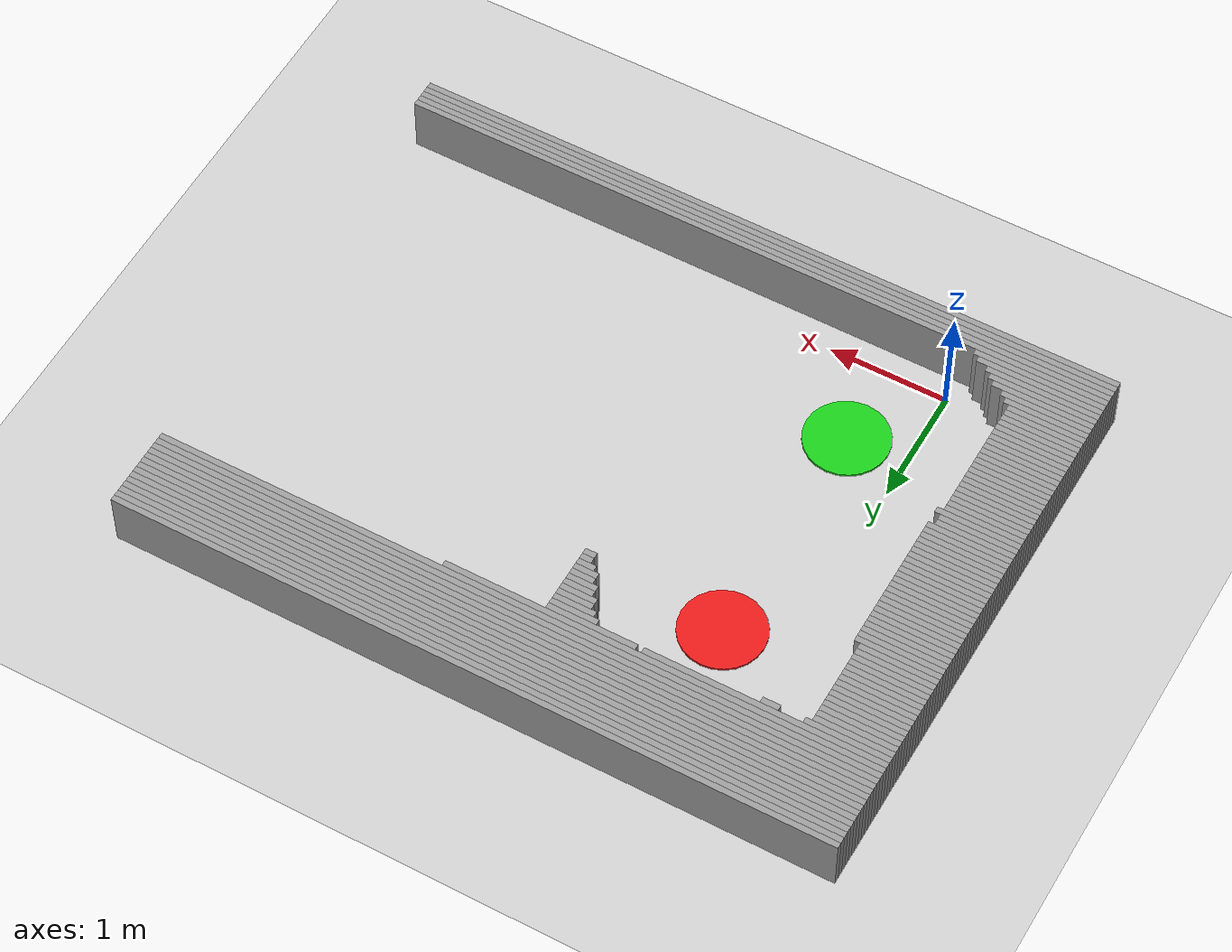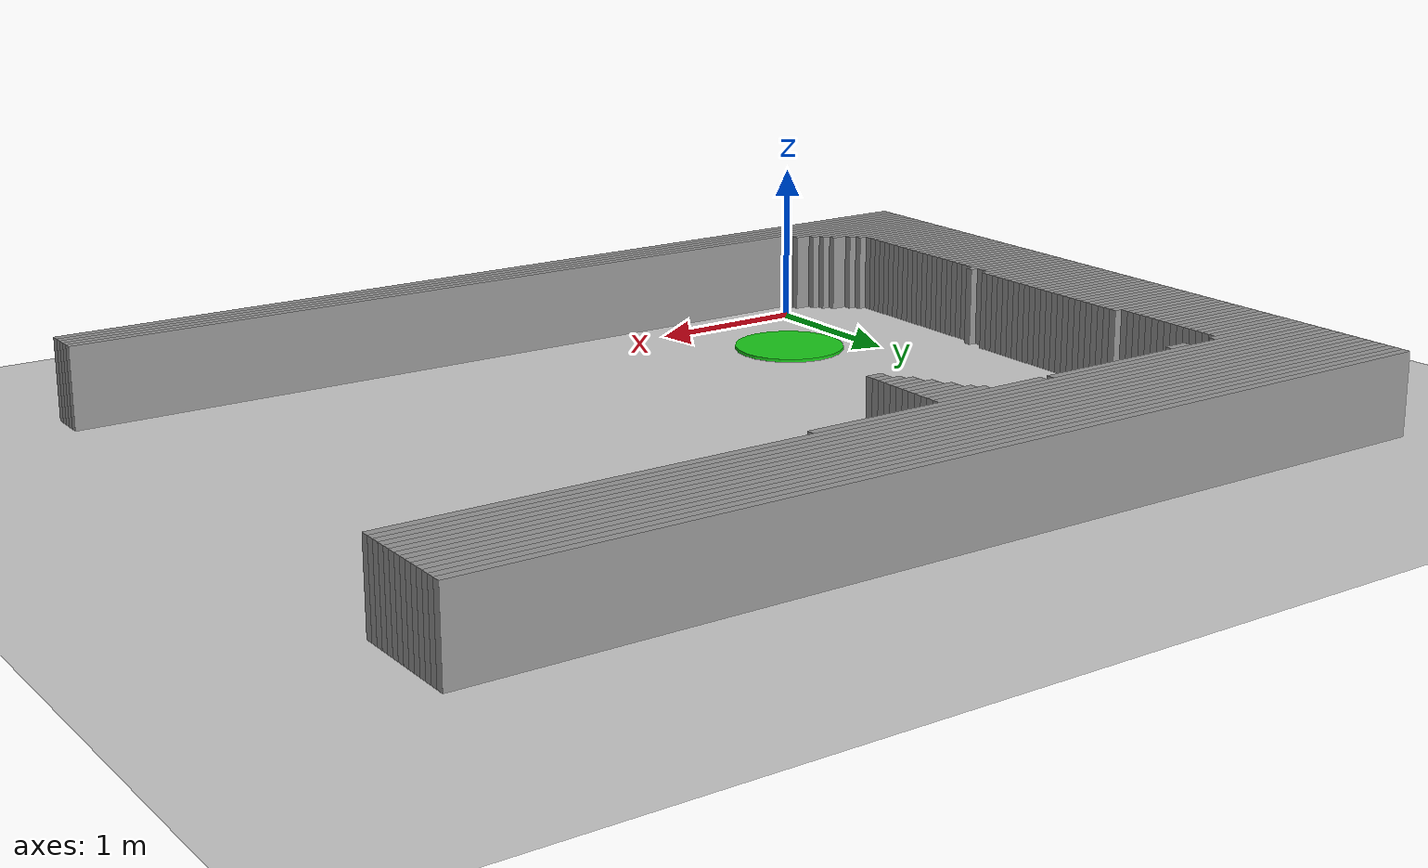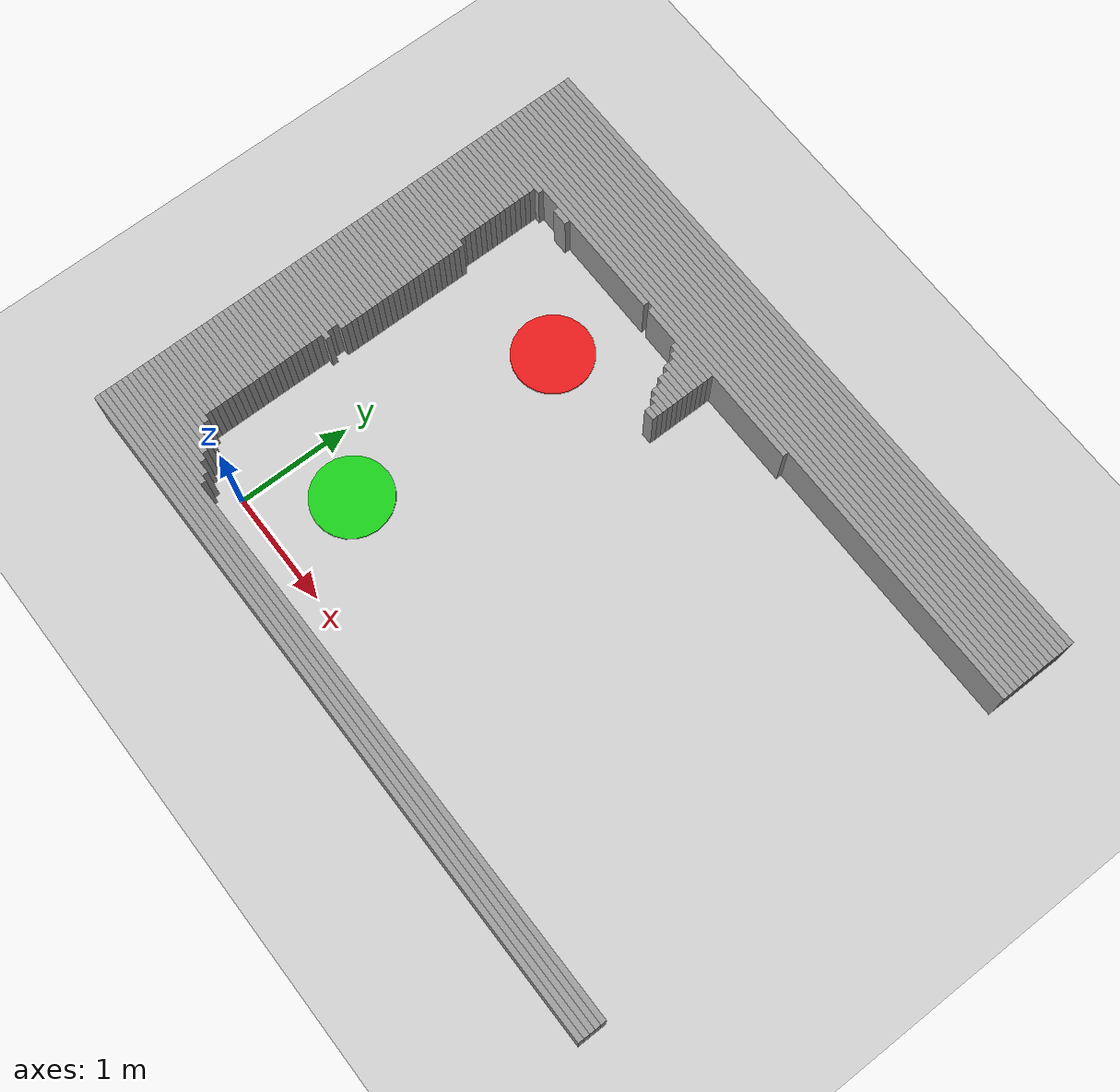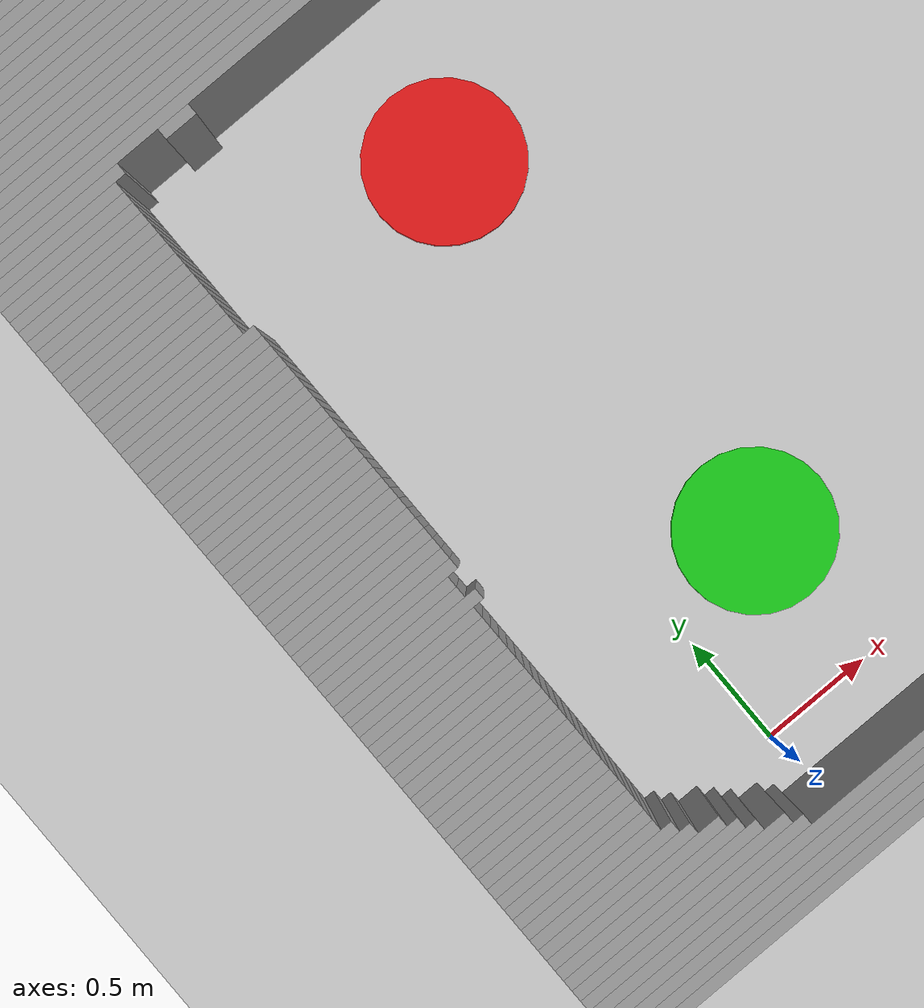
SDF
<sdf version="1.6">
 <world name="lab_world">
  <model name="ground_plane">
   <static>true</static>
   <link name="link">
    <collision name="collision">
     <geometry><plane><normal>0 0 1</normal><size>100 100</size></plane></geometry>
    </collision>
    <visual name="visual">
     <geometry><plane><normal>0 0 1</normal><size>100 100</size></plane></geometry>
     <material><ambient>0.8 0.8 0.8 1</ambient><diffuse>0.8 0.8 0.8 1</diffuse></material>
    </visual>
   </link>
  </model>
  <model name="wall_0">
   <static>true</static>
   <pose>1.8340 4.1660 0.2500 0 0 0</pose>
   <link name="link">
    <collision name="col"><geometry><box><size>6.1000 0.0500 0.5000</size></box></geometry></collision>
    <visual name="vis">
     <geometry><box><size>6.1000 0.0500 0.5000</size></box></geometry>
     <material><ambient>0.4 0.4 0.4 1</ambient><diffuse>0.6 0.6 0.6 1</diffuse></material>
    </visual>
   </link>
  </model>
  <model name="wall_1">
   <static>true</static>
   <pose>1.8340 4.1160 0.2500 0 0 0</pose>
   <link name="link">
    <collision name="col"><geometry><box><size>6.1000 0.0500 0.5000</size></box></geometry></collision>
    <visual name="vis">
     <geometry><box><size>6.1000 0.0500 0.5000</size></box></geometry>
     <material><ambient>0.4 0.4 0.4 1</ambient><diffuse>0.6 0.6 0.6 1</diffuse></material>
    </visual>
   </link>
  </model>
  <model name="wall_2">
   <static>true</static>
   <pose>1.8340 4.0660 0.2500 0 0 0</pose>
   <link name="link">
    <collision name="col"><geometry><box><size>6.1000 0.0500 0.5000</size></box></geometry></collision>
    <visual name="vis">
     <geometry><box><size>6.1000 0.0500 0.5000</size></box></geometry>
     <material><ambient>0.4 0.4 0.4 1</ambient><diffuse>0.6 0.6 0.6 1</diffuse></material>
    </visual>
   </link>
  </model>
  <model name="wall_3">
   <static>true</static>
   <pose>1.8340 4.0160 0.2500 0 0 0</pose>
   <link name="link">
    <collision name="col"><geometry><box><size>6.1000 0.0500 0.5000</size></box></geometry></collision>
    <visual name="vis">
     <geometry><box><size>6.1000 0.0500 0.5000</size></box></geometry>
     <material><ambient>0.4 0.4 0.4 1</ambient><diffuse>0.6 0.6 0.6 1</diffuse></material>
    </visual>
   </link>
  </model>
  <model name="wall_4">
   <static>true</static>
   <pose>1.8340 3.9660 0.2500 0 0 0</pose>
   <link name="link">
    <collision name="col"><geometry><box><size>6.1000 0.0500 0.5000</size></box></geometry></collision>
    <visual name="vis">
     <geometry><box><size>6.1000 0.0500 0.5000</size></box></geometry>
     <material><ambient>0.4 0.4 0.4 1</ambient><diffuse>0.6 0.6 0.6 1</diffuse></material>
    </visual>
   </link>
  </model>
  <model name="wall_5">
   <static>true</static>
   <pose>1.8340 3.9160 0.2500 0 0 0</pose>
   <link name="link">
    <collision name="col"><geometry><box><size>6.1000 0.0500 0.5000</size></box></geometry></collision>
    <visual name="vis">
     <geometry><box><size>6.1000 0.0500 0.5000</size></box></geometry>
     <material><ambient>0.4 0.4 0.4 1</ambient><diffuse>0.6 0.6 0.6 1</diffuse></material>
    </visual>
   </link>
  </model>
  <model name="wall_6">
   <static>true</static>
   <pose>1.8340 3.8660 0.2500 0 0 0</pose>
   <link name="link">
    <collision name="col"><geometry><box><size>6.1000 0.0500 0.5000</size></box></geometry></collision>
    <visual name="vis">
     <geometry><box><size>6.1000 0.0500 0.5000</size></box></geometry>
     <material><ambient>0.4 0.4 0.4 1</ambient><diffuse>0.6 0.6 0.6 1</diffuse></material>
    </visual>
   </link>
  </model>
  <model name="wall_7">
   <static>true</static>
   <pose>1.8340 3.8160 0.2500 0 0 0</pose>
   <link name="link">
    <collision name="col"><geometry><box><size>6.1000 0.0500 0.5000</size></box></geometry></collision>
    <visual name="vis">
     <geometry><box><size>6.1000 0.0500 0.5000</size></box></geometry>
     <material><ambient>0.4 0.4 0.4 1</ambient><diffuse>0.6 0.6 0.6 1</diffuse></material>
    </visual>
   </link>
  </model>
  <model name="wall_8">
   <static>true</static>
   <pose>1.8340 3.7660 0.2500 0 0 0</pose>
   <link name="link">
    <collision name="col"><geometry><box><size>6.1000 0.0500 0.5000</size></box></geometry></collision>
    <visual name="vis">
     <geometry><box><size>6.1000 0.0500 0.5000</size></box></geometry>
     <material><ambient>0.4 0.4 0.4 1</ambient><diffuse>0.6 0.6 0.6 1</diffuse></material>
    </visual>
   </link>
  </model>
  <model name="wall_9">
   <static>true</static>
   <pose>1.8340 3.7160 0.2500 0 0 0</pose>
   <link name="link">
    <collision name="col"><geometry><box><size>6.1000 0.0500 0.5000</size></box></geometry></collision>
    <visual name="vis">
     <geometry><box><size>6.1000 0.0500 0.5000</size></box></geometry>
     <material><ambient>0.4 0.4 0.4 1</ambient><diffuse>0.6 0.6 0.6 1</diffuse></material>
    </visual>
   </link>
  </model>
  <model name="wall_10">
   <static>true</static>
   <pose>1.8340 3.6660 0.2500 0 0 0</pose>
   <link name="link">
    <collision name="col"><geometry><box><size>6.1000 0.0500 0.5000</size></box></geometry></collision>
    <visual name="vis">
     <geometry><box><size>6.1000 0.0500 0.5000</size></box></geometry>
     <material><ambient>0.4 0.4 0.4 1</ambient><diffuse>0.6 0.6 0.6 1</diffuse></material>
    </visual>
   </link>
  </model>
  <model name="wall_11">
   <static>true</static>
   <pose>1.8340 3.6160 0.2500 0 0 0</pose>
   <link name="link">
    <collision name="col"><geometry><box><size>6.1000 0.0500 0.5000</size></box></geometry></collision>
    <visual name="vis">
     <geometry><box><size>6.1000 0.0500 0.5000</size></box></geometry>
     <material><ambient>0.4 0.4 0.4 1</ambient><diffuse>0.6 0.6 0.6 1</diffuse></material>
    </visual>
   </link>
  </model>
  <model name="wall_12">
   <static>true</static>
   <pose>1.8340 3.5660 0.2500 0 0 0</pose>
   <link name="link">
    <collision name="col"><geometry><box><size>6.1000 0.0500 0.5000</size></box></geometry></collision>
    <visual name="vis">
     <geometry><box><size>6.1000 0.0500 0.5000</size></box></geometry>
     <material><ambient>0.4 0.4 0.4 1</ambient><diffuse>0.6 0.6 0.6 1</diffuse></material>
    </visual>
   </link>
  </model>
  <model name="wall_13">
   <static>true</static>
   <pose>1.8340 3.5160 0.2500 0 0 0</pose>
   <link name="link">
    <collision name="col"><geometry><box><size>6.1000 0.0500 0.5000</size></box></geometry></collision>
    <visual name="vis">
     <geometry><box><size>6.1000 0.0500 0.5000</size></box></geometry>
     <material><ambient>0.4 0.4 0.4 1</ambient><diffuse>0.6 0.6 0.6 1</diffuse></material>
    </visual>
   </link>
  </model>
  <model name="wall_14">
   <static>true</static>
   <pose>0.6090 3.4660 0.2500 0 0 0</pose>
   <link name="link">
    <collision name="col"><geometry><box><size>3.6500 0.0500 0.5000</size></box></geometry></collision>
    <visual name="vis">
     <geometry><box><size>3.6500 0.0500 0.5000</size></box></geometry>
     <material><ambient>0.4 0.4 0.4 1</ambient><diffuse>0.6 0.6 0.6 1</diffuse></material>
    </visual>
   </link>
  </model>
  <model name="wall_16">
   <static>true</static>
   <pose>-0.2160 3.4160 0.2500 0 0 0</pose>
   <link name="link">
    <collision name="col"><geometry><box><size>2.0000 0.0500 0.5000</size></box></geometry></collision>
    <visual name="vis">
     <geometry><box><size>2.0000 0.0500 0.5000</size></box></geometry>
     <material><ambient>0.4 0.4 0.4 1</ambient><diffuse>0.6 0.6 0.6 1</diffuse></material>
    </visual>
   </link>
  </model>
  <model name="wall_17">
   <static>true</static>
   <pose>1.2090 3.4160 0.2500 0 0 0</pose>
   <link name="link">
    <collision name="col"><geometry><box><size>0.7500 0.0500 0.5000</size></box></geometry></collision>
    <visual name="vis">
     <geometry><box><size>0.7500 0.0500 0.5000</size></box></geometry>
     <material><ambient>0.4 0.4 0.4 1</ambient><diffuse>0.6 0.6 0.6 1</diffuse></material>
    </visual>
   </link>
  </model>
  <model name="wall_19">
   <static>true</static>
   <pose>-0.8660 3.3660 0.2500 0 0 0</pose>
   <link name="link">
    <collision name="col"><geometry><box><size>0.7000 0.0500 0.5000</size></box></geometry></collision>
    <visual name="vis">
     <geometry><box><size>0.7000 0.0500 0.5000</size></box></geometry>
     <material><ambient>0.4 0.4 0.4 1</ambient><diffuse>0.6 0.6 0.6 1</diffuse></material>
    </visual>
   </link>
  </model>
  <model name="wall_20">
   <static>true</static>
   <pose>-0.2410 3.3660 0.2500 0 0 0</pose>
   <link name="link">
    <collision name="col"><geometry><box><size>0.1500 0.0500 0.5000</size></box></geometry></collision>
    <visual name="vis">
     <geometry><box><size>0.1500 0.0500 0.5000</size></box></geometry>
     <material><ambient>0.4 0.4 0.4 1</ambient><diffuse>0.6 0.6 0.6 1</diffuse></material>
    </visual>
   </link>
  </model>
  <model name="wall_21">
   <static>true</static>
   <pose>1.3840 3.3660 0.2500 0 0 0</pose>
   <link name="link">
    <collision name="col"><geometry><box><size>0.4000 0.0500 0.5000</size></box></geometry></collision>
    <visual name="vis">
     <geometry><box><size>0.4000 0.0500 0.5000</size></box></geometry>
     <material><ambient>0.4 0.4 0.4 1</ambient><diffuse>0.6 0.6 0.6 1</diffuse></material>
    </visual>
   </link>
  </model>
  <model name="wall_23">
   <static>true</static>
   <pose>-0.8910 3.3160 0.2500 0 0 0</pose>
   <link name="link">
    <collision name="col"><geometry><box><size>0.6500 0.0500 0.5000</size></box></geometry></collision>
    <visual name="vis">
     <geometry><box><size>0.6500 0.0500 0.5000</size></box></geometry>
     <material><ambient>0.4 0.4 0.4 1</ambient><diffuse>0.6 0.6 0.6 1</diffuse></material>
    </visual>
   </link>
  </model>
  <model name="wall_24">
   <static>true</static>
   <pose>1.4090 3.3160 0.2500 0 0 0</pose>
   <link name="link">
    <collision name="col"><geometry><box><size>0.3500 0.0500 0.5000</size></box></geometry></collision>
    <visual name="vis">
     <geometry><box><size>0.3500 0.0500 0.5000</size></box></geometry>
     <material><ambient>0.4 0.4 0.4 1</ambient><diffuse>0.6 0.6 0.6 1</diffuse></material>
    </visual>
   </link>
  </model>
  <model name="wall_26">
   <static>true</static>
   <pose>-0.8910 3.2660 0.2500 0 0 0</pose>
   <link name="link">
    <collision name="col"><geometry><box><size>0.6500 0.0500 0.5000</size></box></geometry></collision>
    <visual name="vis">
     <geometry><box><size>0.6500 0.0500 0.5000</size></box></geometry>
     <material><ambient>0.4 0.4 0.4 1</ambient><diffuse>0.6 0.6 0.6 1</diffuse></material>
    </visual>
   </link>
  </model>
  <model name="wall_27">
   <static>true</static>
   <pose>1.4340 3.2660 0.2500 0 0 0</pose>
   <link name="link">
    <collision name="col"><geometry><box><size>0.3000 0.0500 0.5000</size></box></geometry></collision>
    <visual name="vis">
     <geometry><box><size>0.3000 0.0500 0.5000</size></box></geometry>
     <material><ambient>0.4 0.4 0.4 1</ambient><diffuse>0.6 0.6 0.6 1</diffuse></material>
    </visual>
   </link>
  </model>
  <model name="wall_29">
   <static>true</static>
   <pose>-0.8910 3.2160 0.2500 0 0 0</pose>
   <link name="link">
    <collision name="col"><geometry><box><size>0.6500 0.0500 0.5000</size></box></geometry></collision>
    <visual name="vis">
     <geometry><box><size>0.6500 0.0500 0.5000</size></box></geometry>
     <material><ambient>0.4 0.4 0.4 1</ambient><diffuse>0.6 0.6 0.6 1</diffuse></material>
    </visual>
   </link>
  </model>
  <model name="wall_30">
   <static>true</static>
   <pose>1.4340 3.2160 0.2500 0 0 0</pose>
   <link name="link">
    <collision name="col"><geometry><box><size>0.3000 0.0500 0.5000</size></box></geometry></collision>
    <visual name="vis">
     <geometry><box><size>0.3000 0.0500 0.5000</size></box></geometry>
     <material><ambient>0.4 0.4 0.4 1</ambient><diffuse>0.6 0.6 0.6 1</diffuse></material>
    </visual>
   </link>
  </model>
  <model name="wall_32">
   <static>true</static>
   <pose>-0.8910 3.1660 0.2500 0 0 0</pose>
   <link name="link">
    <collision name="col"><geometry><box><size>0.6500 0.0500 0.5000</size></box></geometry></collision>
    <visual name="vis">
     <geometry><box><size>0.6500 0.0500 0.5000</size></box></geometry>
     <material><ambient>0.4 0.4 0.4 1</ambient><diffuse>0.6 0.6 0.6 1</diffuse></material>
    </visual>
   </link>
  </model>
  <model name="wall_33">
   <static>true</static>
   <pose>1.4590 3.1660 0.2500 0 0 0</pose>
   <link name="link">
    <collision name="col"><geometry><box><size>0.2500 0.0500 0.5000</size></box></geometry></collision>
    <visual name="vis">
     <geometry><box><size>0.2500 0.0500 0.5000</size></box></geometry>
     <material><ambient>0.4 0.4 0.4 1</ambient><diffuse>0.6 0.6 0.6 1</diffuse></material>
    </visual>
   </link>
  </model>
  <model name="wall_35">
   <static>true</static>
   <pose>-0.8910 3.1160 0.2500 0 0 0</pose>
   <link name="link">
    <collision name="col"><geometry><box><size>0.6500 0.0500 0.5000</size></box></geometry></collision>
    <visual name="vis">
     <geometry><box><size>0.6500 0.0500 0.5000</size></box></geometry>
     <material><ambient>0.4 0.4 0.4 1</ambient><diffuse>0.6 0.6 0.6 1</diffuse></material>
    </visual>
   </link>
  </model>
  <model name="wall_36">
   <static>true</static>
   <pose>1.4590 3.1160 0.2500 0 0 0</pose>
   <link name="link">
    <collision name="col"><geometry><box><size>0.2500 0.0500 0.5000</size></box></geometry></collision>
    <visual name="vis">
     <geometry><box><size>0.2500 0.0500 0.5000</size></box></geometry>
     <material><ambient>0.4 0.4 0.4 1</ambient><diffuse>0.6 0.6 0.6 1</diffuse></material>
    </visual>
   </link>
  </model>
  <model name="wall_38">
   <static>true</static>
   <pose>-0.8910 3.0660 0.2500 0 0 0</pose>
   <link name="link">
    <collision name="col"><geometry><box><size>0.6500 0.0500 0.5000</size></box></geometry></collision>
    <visual name="vis">
     <geometry><box><size>0.6500 0.0500 0.5000</size></box></geometry>
     <material><ambient>0.4 0.4 0.4 1</ambient><diffuse>0.6 0.6 0.6 1</diffuse></material>
    </visual>
   </link>
  </model>
  <model name="wall_39">
   <static>true</static>
   <pose>1.4840 3.0660 0.2500 0 0 0</pose>
   <link name="link">
    <collision name="col"><geometry><box><size>0.2000 0.0500 0.5000</size></box></geometry></collision>
    <visual name="vis">
     <geometry><box><size>0.2000 0.0500 0.5000</size></box></geometry>
     <material><ambient>0.4 0.4 0.4 1</ambient><diffuse>0.6 0.6 0.6 1</diffuse></material>
    </visual>
   </link>
  </model>
  <model name="wall_41">
   <static>true</static>
   <pose>-0.8910 3.0160 0.2500 0 0 0</pose>
   <link name="link">
    <collision name="col"><geometry><box><size>0.6500 0.0500 0.5000</size></box></geometry></collision>
    <visual name="vis">
     <geometry><box><size>0.6500 0.0500 0.5000</size></box></geometry>
     <material><ambient>0.4 0.4 0.4 1</ambient><diffuse>0.6 0.6 0.6 1</diffuse></material>
    </visual>
   </link>
  </model>
  <model name="wall_42">
   <static>true</static>
   <pose>1.4840 3.0160 0.2500 0 0 0</pose>
   <link name="link">
    <collision name="col"><geometry><box><size>0.2000 0.0500 0.5000</size></box></geometry></collision>
    <visual name="vis">
     <geometry><box><size>0.2000 0.0500 0.5000</size></box></geometry>
     <material><ambient>0.4 0.4 0.4 1</ambient><diffuse>0.6 0.6 0.6 1</diffuse></material>
    </visual>
   </link>
  </model>
  <model name="wall_44">
   <static>true</static>
   <pose>-0.8910 2.9660 0.2500 0 0 0</pose>
   <link name="link">
    <collision name="col"><geometry><box><size>0.6500 0.0500 0.5000</size></box></geometry></collision>
    <visual name="vis">
     <geometry><box><size>0.6500 0.0500 0.5000</size></box></geometry>
     <material><ambient>0.4 0.4 0.4 1</ambient><diffuse>0.6 0.6 0.6 1</diffuse></material>
    </visual>
   </link>
  </model>
  <model name="wall_45">
   <static>true</static>
   <pose>1.5090 2.9660 0.2500 0 0 0</pose>
   <link name="link">
    <collision name="col"><geometry><box><size>0.1500 0.0500 0.5000</size></box></geometry></collision>
    <visual name="vis">
     <geometry><box><size>0.1500 0.0500 0.5000</size></box></geometry>
     <material><ambient>0.4 0.4 0.4 1</ambient><diffuse>0.6 0.6 0.6 1</diffuse></material>
    </visual>
   </link>
  </model>
  <model name="wall_47">
   <static>true</static>
   <pose>-0.8910 2.9160 0.2500 0 0 0</pose>
   <link name="link">
    <collision name="col"><geometry><box><size>0.6500 0.0500 0.5000</size></box></geometry></collision>
    <visual name="vis">
     <geometry><box><size>0.6500 0.0500 0.5000</size></box></geometry>
     <material><ambient>0.4 0.4 0.4 1</ambient><diffuse>0.6 0.6 0.6 1</diffuse></material>
    </visual>
   </link>
  </model>
  <model name="wall_48">
   <static>true</static>
   <pose>1.5340 2.9160 0.2500 0 0 0</pose>
   <link name="link">
    <collision name="col"><geometry><box><size>0.1000 0.0500 0.5000</size></box></geometry></collision>
    <visual name="vis">
     <geometry><box><size>0.1000 0.0500 0.5000</size></box></geometry>
     <material><ambient>0.4 0.4 0.4 1</ambient><diffuse>0.6 0.6 0.6 1</diffuse></material>
    </visual>
   </link>
  </model>
  <model name="wall_50">
   <static>true</static>
   <pose>-0.8910 2.8660 0.2500 0 0 0</pose>
   <link name="link">
    <collision name="col"><geometry><box><size>0.6500 0.0500 0.5000</size></box></geometry></collision>
    <visual name="vis">
     <geometry><box><size>0.6500 0.0500 0.5000</size></box></geometry>
     <material><ambient>0.4 0.4 0.4 1</ambient><diffuse>0.6 0.6 0.6 1</diffuse></material>
    </visual>
   </link>
  </model>
  <model name="wall_51">
   <static>true</static>
   <pose>1.5340 2.8660 0.2500 0 0 0</pose>
   <link name="link">
    <collision name="col"><geometry><box><size>0.1000 0.0500 0.5000</size></box></geometry></collision>
    <visual name="vis">
     <geometry><box><size>0.1000 0.0500 0.5000</size></box></geometry>
     <material><ambient>0.4 0.4 0.4 1</ambient><diffuse>0.6 0.6 0.6 1</diffuse></material>
    </visual>
   </link>
  </model>
  <model name="wall_53">
   <static>true</static>
   <pose>-0.8910 2.8160 0.2500 0 0 0</pose>
   <link name="link">
    <collision name="col"><geometry><box><size>0.6500 0.0500 0.5000</size></box></geometry></collision>
    <visual name="vis">
     <geometry><box><size>0.6500 0.0500 0.5000</size></box></geometry>
     <material><ambient>0.4 0.4 0.4 1</ambient><diffuse>0.6 0.6 0.6 1</diffuse></material>
    </visual>
   </link>
  </model>
  <model name="wall_55">
   <static>true</static>
   <pose>-0.8910 2.7660 0.2500 0 0 0</pose>
   <link name="link">
    <collision name="col"><geometry><box><size>0.6500 0.0500 0.5000</size></box></geometry></collision>
    <visual name="vis">
     <geometry><box><size>0.6500 0.0500 0.5000</size></box></geometry>
     <material><ambient>0.4 0.4 0.4 1</ambient><diffuse>0.6 0.6 0.6 1</diffuse></material>
    </visual>
   </link>
  </model>
  <model name="wall_57">
   <static>true</static>
   <pose>-0.8910 2.7160 0.2500 0 0 0</pose>
   <link name="link">
    <collision name="col"><geometry><box><size>0.6500 0.0500 0.5000</size></box></geometry></collision>
    <visual name="vis">
     <geometry><box><size>0.6500 0.0500 0.5000</size></box></geometry>
     <material><ambient>0.4 0.4 0.4 1</ambient><diffuse>0.6 0.6 0.6 1</diffuse></material>
    </visual>
   </link>
  </model>
  <model name="wall_59">
   <static>true</static>
   <pose>-0.8910 2.6660 0.2500 0 0 0</pose>
   <link name="link">
    <collision name="col"><geometry><box><size>0.6500 0.0500 0.5000</size></box></geometry></collision>
    <visual name="vis">
     <geometry><box><size>0.6500 0.0500 0.5000</size></box></geometry>
     <material><ambient>0.4 0.4 0.4 1</ambient><diffuse>0.6 0.6 0.6 1</diffuse></material>
    </visual>
   </link>
  </model>
  <model name="wall_61">
   <static>true</static>
   <pose>-0.8910 2.6160 0.2500 0 0 0</pose>
   <link name="link">
    <collision name="col"><geometry><box><size>0.6500 0.0500 0.5000</size></box></geometry></collision>
    <visual name="vis">
     <geometry><box><size>0.6500 0.0500 0.5000</size></box></geometry>
     <material><ambient>0.4 0.4 0.4 1</ambient><diffuse>0.6 0.6 0.6 1</diffuse></material>
    </visual>
   </link>
  </model>
  <model name="wall_63">
   <static>true</static>
   <pose>-0.8660 2.5660 0.2500 0 0 0</pose>
   <link name="link">
    <collision name="col"><geometry><box><size>0.7000 0.0500 0.5000</size></box></geometry></collision>
    <visual name="vis">
     <geometry><box><size>0.7000 0.0500 0.5000</size></box></geometry>
     <material><ambient>0.4 0.4 0.4 1</ambient><diffuse>0.6 0.6 0.6 1</diffuse></material>
    </visual>
   </link>
  </model>
  <model name="wall_65">
   <static>true</static>
   <pose>-0.8660 2.5160 0.2500 0 0 0</pose>
   <link name="link">
    <collision name="col"><geometry><box><size>0.7000 0.0500 0.5000</size></box></geometry></collision>
    <visual name="vis">
     <geometry><box><size>0.7000 0.0500 0.5000</size></box></geometry>
     <material><ambient>0.4 0.4 0.4 1</ambient><diffuse>0.6 0.6 0.6 1</diffuse></material>
    </visual>
   </link>
  </model>
  <model name="wall_67">
   <static>true</static>
   <pose>-0.8660 2.4660 0.2500 0 0 0</pose>
   <link name="link">
    <collision name="col"><geometry><box><size>0.7000 0.0500 0.5000</size></box></geometry></collision>
    <visual name="vis">
     <geometry><box><size>0.7000 0.0500 0.5000</size></box></geometry>
     <material><ambient>0.4 0.4 0.4 1</ambient><diffuse>0.6 0.6 0.6 1</diffuse></material>
    </visual>
   </link>
  </model>
  <model name="wall_69">
   <static>true</static>
   <pose>-0.8660 2.4160 0.2500 0 0 0</pose>
   <link name="link">
    <collision name="col"><geometry><box><size>0.7000 0.0500 0.5000</size></box></geometry></collision>
    <visual name="vis">
     <geometry><box><size>0.7000 0.0500 0.5000</size></box></geometry>
     <material><ambient>0.4 0.4 0.4 1</ambient><diffuse>0.6 0.6 0.6 1</diffuse></material>
    </visual>
   </link>
  </model>
  <model name="wall_71">
   <static>true</static>
   <pose>-0.8660 2.3660 0.2500 0 0 0</pose>
   <link name="link">
    <collision name="col"><geometry><box><size>0.7000 0.0500 0.5000</size></box></geometry></collision>
    <visual name="vis">
     <geometry><box><size>0.7000 0.0500 0.5000</size></box></geometry>
     <material><ambient>0.4 0.4 0.4 1</ambient><diffuse>0.6 0.6 0.6 1</diffuse></material>
    </visual>
   </link>
  </model>
  <model name="wall_73">
   <static>true</static>
   <pose>-0.8660 2.3160 0.2500 0 0 0</pose>
   <link name="link">
    <collision name="col"><geometry><box><size>0.7000 0.0500 0.5000</size></box></geometry></collision>
    <visual name="vis">
     <geometry><box><size>0.7000 0.0500 0.5000</size></box></geometry>
     <material><ambient>0.4 0.4 0.4 1</ambient><diffuse>0.6 0.6 0.6 1</diffuse></material>
    </visual>
   </link>
  </model>
  <model name="wall_75">
   <static>true</static>
   <pose>-0.8660 2.2660 0.2500 0 0 0</pose>
   <link name="link">
    <collision name="col"><geometry><box><size>0.7000 0.0500 0.5000</size></box></geometry></collision>
    <visual name="vis">
     <geometry><box><size>0.7000 0.0500 0.5000</size></box></geometry>
     <material><ambient>0.4 0.4 0.4 1</ambient><diffuse>0.6 0.6 0.6 1</diffuse></material>
    </visual>
   </link>
  </model>
  <model name="wall_77">
   <static>true</static>
   <pose>-0.8660 2.2160 0.2500 0 0 0</pose>
   <link name="link">
    <collision name="col"><geometry><box><size>0.7000 0.0500 0.5000</size></box></geometry></collision>
    <visual name="vis">
     <geometry><box><size>0.7000 0.0500 0.5000</size></box></geometry>
     <material><ambient>0.4 0.4 0.4 1</ambient><diffuse>0.6 0.6 0.6 1</diffuse></material>
    </visual>
   </link>
  </model>
  <model name="wall_79">
   <static>true</static>
   <pose>-0.8660 2.1660 0.2500 0 0 0</pose>
   <link name="link">
    <collision name="col"><geometry><box><size>0.7000 0.0500 0.5000</size></box></geometry></collision>
    <visual name="vis">
     <geometry><box><size>0.7000 0.0500 0.5000</size></box></geometry>
     <material><ambient>0.4 0.4 0.4 1</ambient><diffuse>0.6 0.6 0.6 1</diffuse></material>
    </visual>
   </link>
  </model>
  <model name="wall_81">
   <static>true</static>
   <pose>-0.8660 2.1160 0.2500 0 0 0</pose>
   <link name="link">
    <collision name="col"><geometry><box><size>0.7000 0.0500 0.5000</size></box></geometry></collision>
    <visual name="vis">
     <geometry><box><size>0.7000 0.0500 0.5000</size></box></geometry>
     <material><ambient>0.4 0.4 0.4 1</ambient><diffuse>0.6 0.6 0.6 1</diffuse></material>
    </visual>
   </link>
  </model>
  <model name="wall_83">
   <static>true</static>
   <pose>-0.8660 2.0660 0.2500 0 0 0</pose>
   <link name="link">
    <collision name="col"><geometry><box><size>0.7000 0.0500 0.5000</size></box></geometry></collision>
    <visual name="vis">
     <geometry><box><size>0.7000 0.0500 0.5000</size></box></geometry>
     <material><ambient>0.4 0.4 0.4 1</ambient><diffuse>0.6 0.6 0.6 1</diffuse></material>
    </visual>
   </link>
  </model>
  <model name="wall_86">
   <static>true</static>
   <pose>-0.8660 2.0160 0.2500 0 0 0</pose>
   <link name="link">
    <collision name="col"><geometry><box><size>0.7000 0.0500 0.5000</size></box></geometry></collision>
    <visual name="vis">
     <geometry><box><size>0.7000 0.0500 0.5000</size></box></geometry>
     <material><ambient>0.4 0.4 0.4 1</ambient><diffuse>0.6 0.6 0.6 1</diffuse></material>
    </visual>
   </link>
  </model>
  <model name="wall_89">
   <static>true</static>
   <pose>-0.8660 1.9660 0.2500 0 0 0</pose>
   <link name="link">
    <collision name="col"><geometry><box><size>0.7000 0.0500 0.5000</size></box></geometry></collision>
    <visual name="vis">
     <geometry><box><size>0.7000 0.0500 0.5000</size></box></geometry>
     <material><ambient>0.4 0.4 0.4 1</ambient><diffuse>0.6 0.6 0.6 1</diffuse></material>
    </visual>
   </link>
  </model>
  <model name="wall_92">
   <static>true</static>
   <pose>-0.8660 1.9160 0.2500 0 0 0</pose>
   <link name="link">
    <collision name="col"><geometry><box><size>0.7000 0.0500 0.5000</size></box></geometry></collision>
    <visual name="vis">
     <geometry><box><size>0.7000 0.0500 0.5000</size></box></geometry>
     <material><ambient>0.4 0.4 0.4 1</ambient><diffuse>0.6 0.6 0.6 1</diffuse></material>
    </visual>
   </link>
  </model>
  <model name="wall_95">
   <static>true</static>
   <pose>-0.8660 1.8660 0.2500 0 0 0</pose>
   <link name="link">
    <collision name="col"><geometry><box><size>0.7000 0.0500 0.5000</size></box></geometry></collision>
    <visual name="vis">
     <geometry><box><size>0.7000 0.0500 0.5000</size></box></geometry>
     <material><ambient>0.4 0.4 0.4 1</ambient><diffuse>0.6 0.6 0.6 1</diffuse></material>
    </visual>
   </link>
  </model>
  <model name="wall_98">
   <static>true</static>
   <pose>-0.8660 1.8160 0.2500 0 0 0</pose>
   <link name="link">
    <collision name="col"><geometry><box><size>0.7000 0.0500 0.5000</size></box></geometry></collision>
    <visual name="vis">
     <geometry><box><size>0.7000 0.0500 0.5000</size></box></geometry>
     <material><ambient>0.4 0.4 0.4 1</ambient><diffuse>0.6 0.6 0.6 1</diffuse></material>
    </visual>
   </link>
  </model>
  <model name="wall_101">
   <static>true</static>
   <pose>-0.8660 1.7660 0.2500 0 0 0</pose>
   <link name="link">
    <collision name="col"><geometry><box><size>0.7000 0.0500 0.5000</size></box></geometry></collision>
    <visual name="vis">
     <geometry><box><size>0.7000 0.0500 0.5000</size></box></geometry>
     <material><ambient>0.4 0.4 0.4 1</ambient><diffuse>0.6 0.6 0.6 1</diffuse></material>
    </visual>
   </link>
  </model>
  <model name="wall_104">
   <static>true</static>
   <pose>-0.8660 1.7160 0.2500 0 0 0</pose>
   <link name="link">
    <collision name="col"><geometry><box><size>0.7000 0.0500 0.5000</size></box></geometry></collision>
    <visual name="vis">
     <geometry><box><size>0.7000 0.0500 0.5000</size></box></geometry>
     <material><ambient>0.4 0.4 0.4 1</ambient><diffuse>0.6 0.6 0.6 1</diffuse></material>
    </visual>
   </link>
  </model>
  <model name="wall_107">
   <static>true</static>
   <pose>-0.8660 1.6660 0.2500 0 0 0</pose>
   <link name="link">
    <collision name="col"><geometry><box><size>0.7000 0.0500 0.5000</size></box></geometry></collision>
    <visual name="vis">
     <geometry><box><size>0.7000 0.0500 0.5000</size></box></geometry>
     <material><ambient>0.4 0.4 0.4 1</ambient><diffuse>0.6 0.6 0.6 1</diffuse></material>
    </visual>
   </link>
  </model>
  <model name="wall_110">
   <static>true</static>
   <pose>-0.8660 1.6160 0.2500 0 0 0</pose>
   <link name="link">
    <collision name="col"><geometry><box><size>0.7000 0.0500 0.5000</size></box></geometry></collision>
    <visual name="vis">
     <geometry><box><size>0.7000 0.0500 0.5000</size></box></geometry>
     <material><ambient>0.4 0.4 0.4 1</ambient><diffuse>0.6 0.6 0.6 1</diffuse></material>
    </visual>
   </link>
  </model>
  <model name="wall_113">
   <static>true</static>
   <pose>-0.8660 1.5660 0.2500 0 0 0</pose>
   <link name="link">
    <collision name="col"><geometry><box><size>0.7000 0.0500 0.5000</size></box></geometry></collision>
    <visual name="vis">
     <geometry><box><size>0.7000 0.0500 0.5000</size></box></geometry>
     <material><ambient>0.4 0.4 0.4 1</ambient><diffuse>0.6 0.6 0.6 1</diffuse></material>
    </visual>
   </link>
  </model>
  <model name="wall_116">
   <static>true</static>
   <pose>-0.8660 1.5160 0.2500 0 0 0</pose>
   <link name="link">
    <collision name="col"><geometry><box><size>0.7000 0.0500 0.5000</size></box></geometry></collision>
    <visual name="vis">
     <geometry><box><size>0.7000 0.0500 0.5000</size></box></geometry>
     <material><ambient>0.4 0.4 0.4 1</ambient><diffuse>0.6 0.6 0.6 1</diffuse></material>
    </visual>
   </link>
  </model>
  <model name="wall_119">
   <static>true</static>
   <pose>-0.8660 1.4660 0.2500 0 0 0</pose>
   <link name="link">
    <collision name="col"><geometry><box><size>0.7000 0.0500 0.5000</size></box></geometry></collision>
    <visual name="vis">
     <geometry><box><size>0.7000 0.0500 0.5000</size></box></geometry>
     <material><ambient>0.4 0.4 0.4 1</ambient><diffuse>0.6 0.6 0.6 1</diffuse></material>
    </visual>
   </link>
  </model>
  <model name="wall_122">
   <static>true</static>
   <pose>-0.8660 1.4160 0.2500 0 0 0</pose>
   <link name="link">
    <collision name="col"><geometry><box><size>0.7000 0.0500 0.5000</size></box></geometry></collision>
    <visual name="vis">
     <geometry><box><size>0.7000 0.0500 0.5000</size></box></geometry>
     <material><ambient>0.4 0.4 0.4 1</ambient><diffuse>0.6 0.6 0.6 1</diffuse></material>
    </visual>
   </link>
  </model>
  <model name="wall_124">
   <static>true</static>
   <pose>-0.8910 1.3660 0.2500 0 0 0</pose>
   <link name="link">
    <collision name="col"><geometry><box><size>0.6500 0.0500 0.5000</size></box></geometry></collision>
    <visual name="vis">
     <geometry><box><size>0.6500 0.0500 0.5000</size></box></geometry>
     <material><ambient>0.4 0.4 0.4 1</ambient><diffuse>0.6 0.6 0.6 1</diffuse></material>
    </visual>
   </link>
  </model>
  <model name="wall_126">
   <static>true</static>
   <pose>-0.8910 1.3160 0.2500 0 0 0</pose>
   <link name="link">
    <collision name="col"><geometry><box><size>0.6500 0.0500 0.5000</size></box></geometry></collision>
    <visual name="vis">
     <geometry><box><size>0.6500 0.0500 0.5000</size></box></geometry>
     <material><ambient>0.4 0.4 0.4 1</ambient><diffuse>0.6 0.6 0.6 1</diffuse></material>
    </visual>
   </link>
  </model>
  <model name="wall_128">
   <static>true</static>
   <pose>-0.8660 1.2660 0.2500 0 0 0</pose>
   <link name="link">
    <collision name="col"><geometry><box><size>0.7000 0.0500 0.5000</size></box></geometry></collision>
    <visual name="vis">
     <geometry><box><size>0.7000 0.0500 0.5000</size></box></geometry>
     <material><ambient>0.4 0.4 0.4 1</ambient><diffuse>0.6 0.6 0.6 1</diffuse></material>
    </visual>
   </link>
  </model>
  <model name="wall_130">
   <static>true</static>
   <pose>-0.8910 1.2160 0.2500 0 0 0</pose>
   <link name="link">
    <collision name="col"><geometry><box><size>0.6500 0.0500 0.5000</size></box></geometry></collision>
    <visual name="vis">
     <geometry><box><size>0.6500 0.0500 0.5000</size></box></geometry>
     <material><ambient>0.4 0.4 0.4 1</ambient><diffuse>0.6 0.6 0.6 1</diffuse></material>
    </visual>
   </link>
  </model>
  <model name="wall_132">
   <static>true</static>
   <pose>-0.8910 1.1660 0.2500 0 0 0</pose>
   <link name="link">
    <collision name="col"><geometry><box><size>0.6500 0.0500 0.5000</size></box></geometry></collision>
    <visual name="vis">
     <geometry><box><size>0.6500 0.0500 0.5000</size></box></geometry>
     <material><ambient>0.4 0.4 0.4 1</ambient><diffuse>0.6 0.6 0.6 1</diffuse></material>
    </visual>
   </link>
  </model>
  <model name="wall_134">
   <static>true</static>
   <pose>-0.8910 1.1160 0.2500 0 0 0</pose>
   <link name="link">
    <collision name="col"><geometry><box><size>0.6500 0.0500 0.5000</size></box></geometry></collision>
    <visual name="vis">
     <geometry><box><size>0.6500 0.0500 0.5000</size></box></geometry>
     <material><ambient>0.4 0.4 0.4 1</ambient><diffuse>0.6 0.6 0.6 1</diffuse></material>
    </visual>
   </link>
  </model>
  <model name="wall_136">
   <static>true</static>
   <pose>-0.8910 1.0660 0.2500 0 0 0</pose>
   <link name="link">
    <collision name="col"><geometry><box><size>0.6500 0.0500 0.5000</size></box></geometry></collision>
    <visual name="vis">
     <geometry><box><size>0.6500 0.0500 0.5000</size></box></geometry>
     <material><ambient>0.4 0.4 0.4 1</ambient><diffuse>0.6 0.6 0.6 1</diffuse></material>
    </visual>
   </link>
  </model>
  <model name="wall_138">
   <static>true</static>
   <pose>-0.8910 1.0160 0.2500 0 0 0</pose>
   <link name="link">
    <collision name="col"><geometry><box><size>0.6500 0.0500 0.5000</size></box></geometry></collision>
    <visual name="vis">
     <geometry><box><size>0.6500 0.0500 0.5000</size></box></geometry>
     <material><ambient>0.4 0.4 0.4 1</ambient><diffuse>0.6 0.6 0.6 1</diffuse></material>
    </visual>
   </link>
  </model>
  <model name="wall_140">
   <static>true</static>
   <pose>-0.8910 0.9660 0.2500 0 0 0</pose>
   <link name="link">
    <collision name="col"><geometry><box><size>0.6500 0.0500 0.5000</size></box></geometry></collision>
    <visual name="vis">
     <geometry><box><size>0.6500 0.0500 0.5000</size></box></geometry>
     <material><ambient>0.4 0.4 0.4 1</ambient><diffuse>0.6 0.6 0.6 1</diffuse></material>
    </visual>
   </link>
  </model>
  <model name="wall_142">
   <static>true</static>
   <pose>-0.8910 0.9160 0.2500 0 0 0</pose>
   <link name="link">
    <collision name="col"><geometry><box><size>0.6500 0.0500 0.5000</size></box></geometry></collision>
    <visual name="vis">
     <geometry><box><size>0.6500 0.0500 0.5000</size></box></geometry>
     <material><ambient>0.4 0.4 0.4 1</ambient><diffuse>0.6 0.6 0.6 1</diffuse></material>
    </visual>
   </link>
  </model>
  <model name="wall_144">
   <static>true</static>
   <pose>-0.8910 0.8660 0.2500 0 0 0</pose>
   <link name="link">
    <collision name="col"><geometry><box><size>0.6500 0.0500 0.5000</size></box></geometry></collision>
    <visual name="vis">
     <geometry><box><size>0.6500 0.0500 0.5000</size></box></geometry>
     <material><ambient>0.4 0.4 0.4 1</ambient><diffuse>0.6 0.6 0.6 1</diffuse></material>
    </visual>
   </link>
  </model>
  <model name="wall_146">
   <static>true</static>
   <pose>-0.8910 0.8160 0.2500 0 0 0</pose>
   <link name="link">
    <collision name="col"><geometry><box><size>0.6500 0.0500 0.5000</size></box></geometry></collision>
    <visual name="vis">
     <geometry><box><size>0.6500 0.0500 0.5000</size></box></geometry>
     <material><ambient>0.4 0.4 0.4 1</ambient><diffuse>0.6 0.6 0.6 1</diffuse></material>
    </visual>
   </link>
  </model>
  <model name="wall_148">
   <static>true</static>
   <pose>-0.8910 0.7660 0.2500 0 0 0</pose>
   <link name="link">
    <collision name="col"><geometry><box><size>0.6500 0.0500 0.5000</size></box></geometry></collision>
    <visual name="vis">
     <geometry><box><size>0.6500 0.0500 0.5000</size></box></geometry>
     <material><ambient>0.4 0.4 0.4 1</ambient><diffuse>0.6 0.6 0.6 1</diffuse></material>
    </visual>
   </link>
  </model>
  <model name="wall_150">
   <static>true</static>
   <pose>-0.8910 0.7160 0.2500 0 0 0</pose>
   <link name="link">
    <collision name="col"><geometry><box><size>0.6500 0.0500 0.5000</size></box></geometry></collision>
    <visual name="vis">
     <geometry><box><size>0.6500 0.0500 0.5000</size></box></geometry>
     <material><ambient>0.4 0.4 0.4 1</ambient><diffuse>0.6 0.6 0.6 1</diffuse></material>
    </visual>
   </link>
  </model>
  <model name="wall_152">
   <static>true</static>
   <pose>-0.8910 0.6660 0.2500 0 0 0</pose>
   <link name="link">
    <collision name="col"><geometry><box><size>0.6500 0.0500 0.5000</size></box></geometry></collision>
    <visual name="vis">
     <geometry><box><size>0.6500 0.0500 0.5000</size></box></geometry>
     <material><ambient>0.4 0.4 0.4 1</ambient><diffuse>0.6 0.6 0.6 1</diffuse></material>
    </visual>
   </link>
  </model>
  <model name="wall_154">
   <static>true</static>
   <pose>-0.8910 0.6160 0.2500 0 0 0</pose>
   <link name="link">
    <collision name="col"><geometry><box><size>0.6500 0.0500 0.5000</size></box></geometry></collision>
    <visual name="vis">
     <geometry><box><size>0.6500 0.0500 0.5000</size></box></geometry>
     <material><ambient>0.4 0.4 0.4 1</ambient><diffuse>0.6 0.6 0.6 1</diffuse></material>
    </visual>
   </link>
  </model>
  <model name="wall_156">
   <static>true</static>
   <pose>-0.8910 0.5660 0.2500 0 0 0</pose>
   <link name="link">
    <collision name="col"><geometry><box><size>0.6500 0.0500 0.5000</size></box></geometry></collision>
    <visual name="vis">
     <geometry><box><size>0.6500 0.0500 0.5000</size></box></geometry>
     <material><ambient>0.4 0.4 0.4 1</ambient><diffuse>0.6 0.6 0.6 1</diffuse></material>
    </visual>
   </link>
  </model>
  <model name="wall_158">
   <static>true</static>
   <pose>-0.8910 0.5160 0.2500 0 0 0</pose>
   <link name="link">
    <collision name="col"><geometry><box><size>0.6500 0.0500 0.5000</size></box></geometry></collision>
    <visual name="vis">
     <geometry><box><size>0.6500 0.0500 0.5000</size></box></geometry>
     <material><ambient>0.4 0.4 0.4 1</ambient><diffuse>0.6 0.6 0.6 1</diffuse></material>
    </visual>
   </link>
  </model>
  <model name="wall_160">
   <static>true</static>
   <pose>-0.8910 0.4660 0.2500 0 0 0</pose>
   <link name="link">
    <collision name="col"><geometry><box><size>0.6500 0.0500 0.5000</size></box></geometry></collision>
    <visual name="vis">
     <geometry><box><size>0.6500 0.0500 0.5000</size></box></geometry>
     <material><ambient>0.4 0.4 0.4 1</ambient><diffuse>0.6 0.6 0.6 1</diffuse></material>
    </visual>
   </link>
  </model>
  <model name="wall_162">
   <static>true</static>
   <pose>-0.8910 0.4160 0.2500 0 0 0</pose>
   <link name="link">
    <collision name="col"><geometry><box><size>0.6500 0.0500 0.5000</size></box></geometry></collision>
    <visual name="vis">
     <geometry><box><size>0.6500 0.0500 0.5000</size></box></geometry>
     <material><ambient>0.4 0.4 0.4 1</ambient><diffuse>0.6 0.6 0.6 1</diffuse></material>
    </visual>
   </link>
  </model>
  <model name="wall_165">
   <static>true</static>
   <pose>-0.8910 0.3660 0.2500 0 0 0</pose>
   <link name="link">
    <collision name="col"><geometry><box><size>0.6500 0.0500 0.5000</size></box></geometry></collision>
    <visual name="vis">
     <geometry><box><size>0.6500 0.0500 0.5000</size></box></geometry>
     <material><ambient>0.4 0.4 0.4 1</ambient><diffuse>0.6 0.6 0.6 1</diffuse></material>
    </visual>
   </link>
  </model>
  <model name="wall_168">
   <static>true</static>
   <pose>-0.8910 0.3160 0.2500 0 0 0</pose>
   <link name="link">
    <collision name="col"><geometry><box><size>0.6500 0.0500 0.5000</size></box></geometry></collision>
    <visual name="vis">
     <geometry><box><size>0.6500 0.0500 0.5000</size></box></geometry>
     <material><ambient>0.4 0.4 0.4 1</ambient><diffuse>0.6 0.6 0.6 1</diffuse></material>
    </visual>
   </link>
  </model>
  <model name="wall_171">
   <static>true</static>
   <pose>-0.8910 0.2660 0.2500 0 0 0</pose>
   <link name="link">
    <collision name="col"><geometry><box><size>0.6500 0.0500 0.5000</size></box></geometry></collision>
    <visual name="vis">
     <geometry><box><size>0.6500 0.0500 0.5000</size></box></geometry>
     <material><ambient>0.4 0.4 0.4 1</ambient><diffuse>0.6 0.6 0.6 1</diffuse></material>
    </visual>
   </link>
  </model>
  <model name="wall_174">
   <static>true</static>
   <pose>-0.8910 0.2160 0.2500 0 0 0</pose>
   <link name="link">
    <collision name="col"><geometry><box><size>0.6500 0.0500 0.5000</size></box></geometry></collision>
    <visual name="vis">
     <geometry><box><size>0.6500 0.0500 0.5000</size></box></geometry>
     <material><ambient>0.4 0.4 0.4 1</ambient><diffuse>0.6 0.6 0.6 1</diffuse></material>
    </visual>
   </link>
  </model>
  <model name="wall_177">
   <static>true</static>
   <pose>-0.8910 0.1660 0.2500 0 0 0</pose>
   <link name="link">
    <collision name="col"><geometry><box><size>0.6500 0.0500 0.5000</size></box></geometry></collision>
    <visual name="vis">
     <geometry><box><size>0.6500 0.0500 0.5000</size></box></geometry>
     <material><ambient>0.4 0.4 0.4 1</ambient><diffuse>0.6 0.6 0.6 1</diffuse></material>
    </visual>
   </link>
  </model>
  <model name="wall_180">
   <static>true</static>
   <pose>-0.8660 0.1160 0.2500 0 0 0</pose>
   <link name="link">
    <collision name="col"><geometry><box><size>0.7000 0.0500 0.5000</size></box></geometry></collision>
    <visual name="vis">
     <geometry><box><size>0.7000 0.0500 0.5000</size></box></geometry>
     <material><ambient>0.4 0.4 0.4 1</ambient><diffuse>0.6 0.6 0.6 1</diffuse></material>
    </visual>
   </link>
  </model>
  <model name="wall_183">
   <static>true</static>
   <pose>-0.8410 0.0660 0.2500 0 0 0</pose>
   <link name="link">
    <collision name="col"><geometry><box><size>0.7500 0.0500 0.5000</size></box></geometry></collision>
    <visual name="vis">
     <geometry><box><size>0.7500 0.0500 0.5000</size></box></geometry>
     <material><ambient>0.4 0.4 0.4 1</ambient><diffuse>0.6 0.6 0.6 1</diffuse></material>
    </visual>
   </link>
  </model>
  <model name="wall_186">
   <static>true</static>
   <pose>-0.7910 0.0160 0.2500 0 0 0</pose>
   <link name="link">
    <collision name="col"><geometry><box><size>0.8500 0.0500 0.5000</size></box></geometry></collision>
    <visual name="vis">
     <geometry><box><size>0.8500 0.0500 0.5000</size></box></geometry>
     <material><ambient>0.4 0.4 0.4 1</ambient><diffuse>0.6 0.6 0.6 1</diffuse></material>
    </visual>
   </link>
  </model>
  <model name="wall_189">
   <static>true</static>
   <pose>-0.7660 -0.0340 0.2500 0 0 0</pose>
   <link name="link">
    <collision name="col"><geometry><box><size>0.9000 0.0500 0.5000</size></box></geometry></collision>
    <visual name="vis">
     <geometry><box><size>0.9000 0.0500 0.5000</size></box></geometry>
     <material><ambient>0.4 0.4 0.4 1</ambient><diffuse>0.6 0.6 0.6 1</diffuse></material>
    </visual>
   </link>
  </model>
  <model name="wall_192">
   <static>true</static>
   <pose>-0.7410 -0.0840 0.2500 0 0 0</pose>
   <link name="link">
    <collision name="col"><geometry><box><size>0.9500 0.0500 0.5000</size></box></geometry></collision>
    <visual name="vis">
     <geometry><box><size>0.9500 0.0500 0.5000</size></box></geometry>
     <material><ambient>0.4 0.4 0.4 1</ambient><diffuse>0.6 0.6 0.6 1</diffuse></material>
    </visual>
   </link>
  </model>
  <model name="wall_196">
   <static>true</static>
   <pose>-0.6910 -0.1340 0.2500 0 0 0</pose>
   <link name="link">
    <collision name="col"><geometry><box><size>1.0500 0.0500 0.5000</size></box></geometry></collision>
    <visual name="vis">
     <geometry><box><size>1.0500 0.0500 0.5000</size></box></geometry>
     <material><ambient>0.4 0.4 0.4 1</ambient><diffuse>0.6 0.6 0.6 1</diffuse></material>
    </visual>
   </link>
  </model>
  <model name="wall_198">
   <static>true</static>
   <pose>-0.6660 -0.1840 0.2500 0 0 0</pose>
   <link name="link">
    <collision name="col"><geometry><box><size>1.1000 0.0500 0.5000</size></box></geometry></collision>
    <visual name="vis">
     <geometry><box><size>1.1000 0.0500 0.5000</size></box></geometry>
     <material><ambient>0.4 0.4 0.4 1</ambient><diffuse>0.6 0.6 0.6 1</diffuse></material>
    </visual>
   </link>
  </model>
  <model name="wall_200">
   <static>true</static>
   <pose>1.8340 -0.2340 0.2500 0 0 0</pose>
   <link name="link">
    <collision name="col"><geometry><box><size>6.1000 0.0500 0.5000</size></box></geometry></collision>
    <visual name="vis">
     <geometry><box><size>6.1000 0.0500 0.5000</size></box></geometry>
     <material><ambient>0.4 0.4 0.4 1</ambient><diffuse>0.6 0.6 0.6 1</diffuse></material>
    </visual>
   </link>
  </model>
  <model name="wall_201">
   <static>true</static>
   <pose>1.8340 -0.2840 0.2500 0 0 0</pose>
   <link name="link">
    <collision name="col"><geometry><box><size>6.1000 0.0500 0.5000</size></box></geometry></collision>
    <visual name="vis">
     <geometry><box><size>6.1000 0.0500 0.5000</size></box></geometry>
     <material><ambient>0.4 0.4 0.4 1</ambient><diffuse>0.6 0.6 0.6 1</diffuse></material>
    </visual>
   </link>
  </model>
  <model name="wall_202">
   <static>true</static>
   <pose>1.8340 -0.3340 0.2500 0 0 0</pose>
   <link name="link">
    <collision name="col"><geometry><box><size>6.1000 0.0500 0.5000</size></box></geometry></collision>
    <visual name="vis">
     <geometry><box><size>6.1000 0.0500 0.5000</size></box></geometry>
     <material><ambient>0.4 0.4 0.4 1</ambient><diffuse>0.6 0.6 0.6 1</diffuse></material>
    </visual>
   </link>
  </model>
  <model name="wall_203">
   <static>true</static>
   <pose>1.8340 -0.3840 0.2500 0 0 0</pose>
   <link name="link">
    <collision name="col"><geometry><box><size>6.1000 0.0500 0.5000</size></box></geometry></collision>
    <visual name="vis">
     <geometry><box><size>6.1000 0.0500 0.5000</size></box></geometry>
     <material><ambient>0.4 0.4 0.4 1</ambient><diffuse>0.6 0.6 0.6 1</diffuse></material>
    </visual>
   </link>
  </model>
  <model name="wall_204">
   <static>true</static>
   <pose>1.8340 -0.4340 0.2500 0 0 0</pose>
   <link name="link">
    <collision name="col"><geometry><box><size>6.1000 0.0500 0.5000</size></box></geometry></collision>
    <visual name="vis">
     <geometry><box><size>6.1000 0.0500 0.5000</size></box></geometry>
     <material><ambient>0.4 0.4 0.4 1</ambient><diffuse>0.6 0.6 0.6 1</diffuse></material>
    </visual>
   </link>
  </model>
  <model name="spray_zone_A">
   <static>true</static>
   <pose>0.5 2.7 0.015 0 0 0</pose>
   <link name="link">
    <visual name="vis">
     <geometry><cylinder><radius>0.35</radius><length>0.02</length></cylinder></geometry>
     <material><ambient>0.9 0.1 0.1 1</ambient><diffuse>0.9 0.1 0.1 1</diffuse></material>
    </visual>
   </link>
  </model>
  <model name="fertilize_zone_D">
   <static>true</static>
   <pose>0.5 0.7 0.015 0 0 0</pose>
   <link name="link">
    <visual name="vis">
     <geometry><cylinder><radius>0.35</radius><length>0.02</length></cylinder></geometry>
     <material><ambient>0.1 0.8 0.1 1</ambient><diffuse>0.1 0.8 0.1 1</diffuse></material>
    </visual>
   </link>
  </model>
 </world>
</sdf>
